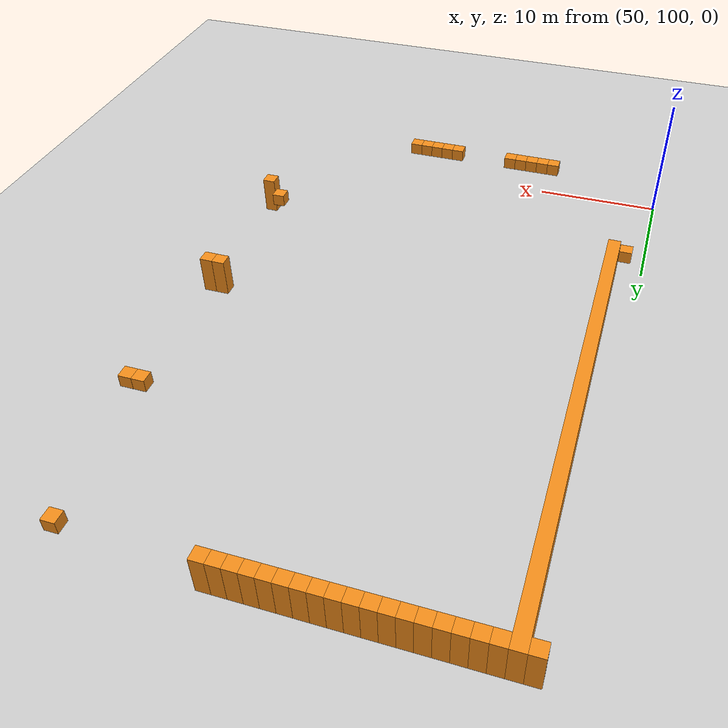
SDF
<sdf version="1.6">
 <world name="default">
  <include><uri>model://ground_plane</uri></include>
  <model name="unit_box_566">
   <pose>51.50   109.50     1.50 0 0 0</pose>
   <static>1</static>
   <link name="link">
    <inertial>
     <mass>5000</mass>
     <inertia><ixx>200</ixx><ixy>0</ixy><ixz>0</ixz><iyy>200</iyy><iyz>0</iyz><izz>200</izz></inertia>
    </inertial>
    <collision name="collision"><geometry><box><size>1 1 1</size></box></geometry></collision>
    <visual name="visual">
     <geometry><box><size>1 1 1</size></box></geometry>
     <material>
      <script><name>Gazebo/Orange</name><uri>file://media/materials/scripts/gazebo.material</uri></script>
     </material>
    </visual>
   </link>
  </model>
  <model name="unit_box_567">
   <pose>51.50   146.50     1.50 0 0 0</pose>
   <static>1</static>
   <link name="link">
    <inertial>
     <mass>5000</mass>
     <inertia><ixx>200</ixx><ixy>0</ixy><ixz>0</ixz><iyy>200</iyy><iyz>0</iyz><izz>200</izz></inertia>
    </inertial>
    <collision name="collision"><geometry><box><size>1 1 3</size></box></geometry></collision>
    <visual name="visual">
     <geometry><box><size>1 1 3</size></box></geometry>
     <material>
      <script><name>Gazebo/Orange</name><uri>file://media/materials/scripts/gazebo.material</uri></script>
     </material>
    </visual>
   </link>
  </model>
  <model name="unit_box_577">
   <pose>52.50   128.50     1.50 0 0 0</pose>
   <static>1</static>
   <link name="link">
    <inertial>
     <mass>5000</mass>
     <inertia><ixx>200</ixx><ixy>0</ixy><ixz>0</ixz><iyy>200</iyy><iyz>0</iyz><izz>200</izz></inertia>
    </inertial>
    <collision name="collision"><geometry><box><size>1 37 3</size></box></geometry></collision>
    <visual name="visual">
     <geometry><box><size>1 37 3</size></box></geometry>
     <material>
      <script><name>Gazebo/Orange</name><uri>file://media/materials/scripts/gazebo.material</uri></script>
     </material>
    </visual>
   </link>
  </model>
  <model name="unit_box_587">
   <pose>53.50   146.50     1.50 0 0 0</pose>
   <static>1</static>
   <link name="link">
    <inertial>
     <mass>5000</mass>
     <inertia><ixx>200</ixx><ixy>0</ixy><ixz>0</ixz><iyy>200</iyy><iyz>0</iyz><izz>200</izz></inertia>
    </inertial>
    <collision name="collision"><geometry><box><size>1 1 3</size></box></geometry></collision>
    <visual name="visual">
     <geometry><box><size>1 1 3</size></box></geometry>
     <material>
      <script><name>Gazebo/Orange</name><uri>file://media/materials/scripts/gazebo.material</uri></script>
     </material>
    </visual>
   </link>
  </model>
  <model name="unit_box_598">
   <pose>54.50   146.50     1.50 0 0 0</pose>
   <static>1</static>
   <link name="link">
    <inertial>
     <mass>5000</mass>
     <inertia><ixx>200</ixx><ixy>0</ixy><ixz>0</ixz><iyy>200</iyy><iyz>0</iyz><izz>200</izz></inertia>
    </inertial>
    <collision name="collision"><geometry><box><size>1 1 3</size></box></geometry></collision>
    <visual name="visual">
     <geometry><box><size>1 1 3</size></box></geometry>
     <material>
      <script><name>Gazebo/Orange</name><uri>file://media/materials/scripts/gazebo.material</uri></script>
     </material>
    </visual>
   </link>
  </model>
  <model name="unit_box_607">
   <pose>55.50   146.50     1.50 0 0 0</pose>
   <static>1</static>
   <link name="link">
    <inertial>
     <mass>5000</mass>
     <inertia><ixx>200</ixx><ixy>0</ixy><ixz>0</ixz><iyy>200</iyy><iyz>0</iyz><izz>200</izz></inertia>
    </inertial>
    <collision name="collision"><geometry><box><size>1 1 3</size></box></geometry></collision>
    <visual name="visual">
     <geometry><box><size>1 1 3</size></box></geometry>
     <material>
      <script><name>Gazebo/Orange</name><uri>file://media/materials/scripts/gazebo.material</uri></script>
     </material>
    </visual>
   </link>
  </model>
  <model name="unit_box_616">
   <pose>56.50   146.50     1.50 0 0 0</pose>
   <static>1</static>
   <link name="link">
    <inertial>
     <mass>5000</mass>
     <inertia><ixx>200</ixx><ixy>0</ixy><ixz>0</ixz><iyy>200</iyy><iyz>0</iyz><izz>200</izz></inertia>
    </inertial>
    <collision name="collision"><geometry><box><size>1 1 3</size></box></geometry></collision>
    <visual name="visual">
     <geometry><box><size>1 1 3</size></box></geometry>
     <material>
      <script><name>Gazebo/Orange</name><uri>file://media/materials/scripts/gazebo.material</uri></script>
     </material>
    </visual>
   </link>
  </model>
  <model name="unit_box_626">
   <pose>57.50   146.50     1.50 0 0 0</pose>
   <static>1</static>
   <link name="link">
    <inertial>
     <mass>5000</mass>
     <inertia><ixx>200</ixx><ixy>0</ixy><ixz>0</ixz><iyy>200</iyy><iyz>0</iyz><izz>200</izz></inertia>
    </inertial>
    <collision name="collision"><geometry><box><size>1 1 3</size></box></geometry></collision>
    <visual name="visual">
     <geometry><box><size>1 1 3</size></box></geometry>
     <material>
      <script><name>Gazebo/Orange</name><uri>file://media/materials/scripts/gazebo.material</uri></script>
     </material>
    </visual>
   </link>
  </model>
  <model name="unit_box_635">
   <pose>58.50   146.50     1.50 0 0 0</pose>
   <static>1</static>
   <link name="link">
    <inertial>
     <mass>5000</mass>
     <inertia><ixx>200</ixx><ixy>0</ixy><ixz>0</ixz><iyy>200</iyy><iyz>0</iyz><izz>200</izz></inertia>
    </inertial>
    <collision name="collision"><geometry><box><size>1 1 3</size></box></geometry></collision>
    <visual name="visual">
     <geometry><box><size>1 1 3</size></box></geometry>
     <material>
      <script><name>Gazebo/Orange</name><uri>file://media/materials/scripts/gazebo.material</uri></script>
     </material>
    </visual>
   </link>
  </model>
  <model name="unit_box_646">
   <pose>59.50    98.00     1.50 0 0 0</pose>
   <static>1</static>
   <link name="link">
    <inertial>
     <mass>5000</mass>
     <inertia><ixx>200</ixx><ixy>0</ixy><ixz>0</ixz><iyy>200</iyy><iyz>0</iyz><izz>200</izz></inertia>
    </inertial>
    <collision name="collision"><geometry><box><size>1 1 1</size></box></geometry></collision>
    <visual name="visual">
     <geometry><box><size>1 1 1</size></box></geometry>
     <material>
      <script><name>Gazebo/Orange</name><uri>file://media/materials/scripts/gazebo.material</uri></script>
     </material>
    </visual>
   </link>
  </model>
  <model name="unit_box_647">
   <pose>59.50   146.50     1.50 0 0 0</pose>
   <static>1</static>
   <link name="link">
    <inertial>
     <mass>5000</mass>
     <inertia><ixx>200</ixx><ixy>0</ixy><ixz>0</ixz><iyy>200</iyy><iyz>0</iyz><izz>200</izz></inertia>
    </inertial>
    <collision name="collision"><geometry><box><size>1 1 3</size></box></geometry></collision>
    <visual name="visual">
     <geometry><box><size>1 1 3</size></box></geometry>
     <material>
      <script><name>Gazebo/Orange</name><uri>file://media/materials/scripts/gazebo.material</uri></script>
     </material>
    </visual>
   </link>
  </model>
  <model name="unit_box_658">
   <pose>60.50    98.00     1.50 0 0 0</pose>
   <static>1</static>
   <link name="link">
    <inertial>
     <mass>5000</mass>
     <inertia><ixx>200</ixx><ixy>0</ixy><ixz>0</ixz><iyy>200</iyy><iyz>0</iyz><izz>200</izz></inertia>
    </inertial>
    <collision name="collision"><geometry><box><size>1 1 1</size></box></geometry></collision>
    <visual name="visual">
     <geometry><box><size>1 1 1</size></box></geometry>
     <material>
      <script><name>Gazebo/Orange</name><uri>file://media/materials/scripts/gazebo.material</uri></script>
     </material>
    </visual>
   </link>
  </model>
  <model name="unit_box_659">
   <pose>60.50   146.50     1.50 0 0 0</pose>
   <static>1</static>
   <link name="link">
    <inertial>
     <mass>5000</mass>
     <inertia><ixx>200</ixx><ixy>0</ixy><ixz>0</ixz><iyy>200</iyy><iyz>0</iyz><izz>200</izz></inertia>
    </inertial>
    <collision name="collision"><geometry><box><size>1 1 3</size></box></geometry></collision>
    <visual name="visual">
     <geometry><box><size>1 1 3</size></box></geometry>
     <material>
      <script><name>Gazebo/Orange</name><uri>file://media/materials/scripts/gazebo.material</uri></script>
     </material>
    </visual>
   </link>
  </model>
  <model name="unit_box_670">
   <pose>61.50    98.00     1.50 0 0 0</pose>
   <static>1</static>
   <link name="link">
    <inertial>
     <mass>5000</mass>
     <inertia><ixx>200</ixx><ixy>0</ixy><ixz>0</ixz><iyy>200</iyy><iyz>0</iyz><izz>200</izz></inertia>
    </inertial>
    <collision name="collision"><geometry><box><size>1 1 1</size></box></geometry></collision>
    <visual name="visual">
     <geometry><box><size>1 1 1</size></box></geometry>
     <material>
      <script><name>Gazebo/Orange</name><uri>file://media/materials/scripts/gazebo.material</uri></script>
     </material>
    </visual>
   </link>
  </model>
  <model name="unit_box_671">
   <pose>61.50   146.50     1.50 0 0 0</pose>
   <static>1</static>
   <link name="link">
    <inertial>
     <mass>5000</mass>
     <inertia><ixx>200</ixx><ixy>0</ixy><ixz>0</ixz><iyy>200</iyy><iyz>0</iyz><izz>200</izz></inertia>
    </inertial>
    <collision name="collision"><geometry><box><size>1 1 3</size></box></geometry></collision>
    <visual name="visual">
     <geometry><box><size>1 1 3</size></box></geometry>
     <material>
      <script><name>Gazebo/Orange</name><uri>file://media/materials/scripts/gazebo.material</uri></script>
     </material>
    </visual>
   </link>
  </model>
  <model name="unit_box_680">
   <pose>62.50    98.00     1.50 0 0 0</pose>
   <static>1</static>
   <link name="link">
    <inertial>
     <mass>5000</mass>
     <inertia><ixx>200</ixx><ixy>0</ixy><ixz>0</ixz><iyy>200</iyy><iyz>0</iyz><izz>200</izz></inertia>
    </inertial>
    <collision name="collision"><geometry><box><size>1 1 1</size></box></geometry></collision>
    <visual name="visual">
     <geometry><box><size>1 1 1</size></box></geometry>
     <material>
      <script><name>Gazebo/Orange</name><uri>file://media/materials/scripts/gazebo.material</uri></script>
     </material>
    </visual>
   </link>
  </model>
  <model name="unit_box_681">
   <pose>62.50   146.50     1.50 0 0 0</pose>
   <static>1</static>
   <link name="link">
    <inertial>
     <mass>5000</mass>
     <inertia><ixx>200</ixx><ixy>0</ixy><ixz>0</ixz><iyy>200</iyy><iyz>0</iyz><izz>200</izz></inertia>
    </inertial>
    <collision name="collision"><geometry><box><size>1 1 3</size></box></geometry></collision>
    <visual name="visual">
     <geometry><box><size>1 1 3</size></box></geometry>
     <material>
      <script><name>Gazebo/Orange</name><uri>file://media/materials/scripts/gazebo.material</uri></script>
     </material>
    </visual>
   </link>
  </model>
  <model name="unit_box_690">
   <pose>63.50    98.00     1.50 0 0 0</pose>
   <static>1</static>
   <link name="link">
    <inertial>
     <mass>5000</mass>
     <inertia><ixx>200</ixx><ixy>0</ixy><ixz>0</ixz><iyy>200</iyy><iyz>0</iyz><izz>200</izz></inertia>
    </inertial>
    <collision name="collision"><geometry><box><size>1 1 1</size></box></geometry></collision>
    <visual name="visual">
     <geometry><box><size>1 1 1</size></box></geometry>
     <material>
      <script><name>Gazebo/Orange</name><uri>file://media/materials/scripts/gazebo.material</uri></script>
     </material>
    </visual>
   </link>
  </model>
  <model name="unit_box_691">
   <pose>63.50   146.50     1.50 0 0 0</pose>
   <static>1</static>
   <link name="link">
    <inertial>
     <mass>5000</mass>
     <inertia><ixx>200</ixx><ixy>0</ixy><ixz>0</ixz><iyy>200</iyy><iyz>0</iyz><izz>200</izz></inertia>
    </inertial>
    <collision name="collision"><geometry><box><size>1 1 3</size></box></geometry></collision>
    <visual name="visual">
     <geometry><box><size>1 1 3</size></box></geometry>
     <material>
      <script><name>Gazebo/Orange</name><uri>file://media/materials/scripts/gazebo.material</uri></script>
     </material>
    </visual>
   </link>
  </model>
  <model name="unit_box_700">
   <pose>64.50   146.50     1.50 0 0 0</pose>
   <static>1</static>
   <link name="link">
    <inertial>
     <mass>5000</mass>
     <inertia><ixx>200</ixx><ixy>0</ixy><ixz>0</ixz><iyy>200</iyy><iyz>0</iyz><izz>200</izz></inertia>
    </inertial>
    <collision name="collision"><geometry><box><size>1 1 3</size></box></geometry></collision>
    <visual name="visual">
     <geometry><box><size>1 1 3</size></box></geometry>
     <material>
      <script><name>Gazebo/Orange</name><uri>file://media/materials/scripts/gazebo.material</uri></script>
     </material>
    </visual>
   </link>
  </model>
  <model name="unit_box_709">
   <pose>65.50   146.50     1.50 0 0 0</pose>
   <static>1</static>
   <link name="link">
    <inertial>
     <mass>5000</mass>
     <inertia><ixx>200</ixx><ixy>0</ixy><ixz>0</ixz><iyy>200</iyy><iyz>0</iyz><izz>200</izz></inertia>
    </inertial>
    <collision name="collision"><geometry><box><size>1 1 3</size></box></geometry></collision>
    <visual name="visual">
     <geometry><box><size>1 1 3</size></box></geometry>
     <material>
      <script><name>Gazebo/Orange</name><uri>file://media/materials/scripts/gazebo.material</uri></script>
     </material>
    </visual>
   </link>
  </model>
  <model name="unit_box_718">
   <pose>66.50   146.50     1.50 0 0 0</pose>
   <static>1</static>
   <link name="link">
    <inertial>
     <mass>5000</mass>
     <inertia><ixx>200</ixx><ixy>0</ixy><ixz>0</ixz><iyy>200</iyy><iyz>0</iyz><izz>200</izz></inertia>
    </inertial>
    <collision name="collision"><geometry><box><size>1 1 3</size></box></geometry></collision>
    <visual name="visual">
     <geometry><box><size>1 1 3</size></box></geometry>
     <material>
      <script><name>Gazebo/Orange</name><uri>file://media/materials/scripts/gazebo.material</uri></script>
     </material>
    </visual>
   </link>
  </model>
  <model name="unit_box_727">
   <pose>67.50   146.50     1.50 0 0 0</pose>
   <static>1</static>
   <link name="link">
    <inertial>
     <mass>5000</mass>
     <inertia><ixx>200</ixx><ixy>0</ixy><ixz>0</ixz><iyy>200</iyy><iyz>0</iyz><izz>200</izz></inertia>
    </inertial>
    <collision name="collision"><geometry><box><size>1 1 3</size></box></geometry></collision>
    <visual name="visual">
     <geometry><box><size>1 1 3</size></box></geometry>
     <material>
      <script><name>Gazebo/Orange</name><uri>file://media/materials/scripts/gazebo.material</uri></script>
     </material>
    </visual>
   </link>
  </model>
  <model name="unit_box_736">
   <pose>68.50    98.00     1.50 0 0 0</pose>
   <static>1</static>
   <link name="link">
    <inertial>
     <mass>5000</mass>
     <inertia><ixx>200</ixx><ixy>0</ixy><ixz>0</ixz><iyy>200</iyy><iyz>0</iyz><izz>200</izz></inertia>
    </inertial>
    <collision name="collision"><geometry><box><size>1 1 1</size></box></geometry></collision>
    <visual name="visual">
     <geometry><box><size>1 1 1</size></box></geometry>
     <material>
      <script><name>Gazebo/Orange</name><uri>file://media/materials/scripts/gazebo.material</uri></script>
     </material>
    </visual>
   </link>
  </model>
  <model name="unit_box_737">
   <pose>68.50   146.50     1.50 0 0 0</pose>
   <static>1</static>
   <link name="link">
    <inertial>
     <mass>5000</mass>
     <inertia><ixx>200</ixx><ixy>0</ixy><ixz>0</ixz><iyy>200</iyy><iyz>0</iyz><izz>200</izz></inertia>
    </inertial>
    <collision name="collision"><geometry><box><size>1 1 3</size></box></geometry></collision>
    <visual name="visual">
     <geometry><box><size>1 1 3</size></box></geometry>
     <material>
      <script><name>Gazebo/Orange</name><uri>file://media/materials/scripts/gazebo.material</uri></script>
     </material>
    </visual>
   </link>
  </model>
  <model name="unit_box_746">
   <pose>69.50    98.00     1.50 0 0 0</pose>
   <static>1</static>
   <link name="link">
    <inertial>
     <mass>5000</mass>
     <inertia><ixx>200</ixx><ixy>0</ixy><ixz>0</ixz><iyy>200</iyy><iyz>0</iyz><izz>200</izz></inertia>
    </inertial>
    <collision name="collision"><geometry><box><size>1 1 1</size></box></geometry></collision>
    <visual name="visual">
     <geometry><box><size>1 1 1</size></box></geometry>
     <material>
      <script><name>Gazebo/Orange</name><uri>file://media/materials/scripts/gazebo.material</uri></script>
     </material>
    </visual>
   </link>
  </model>
  <model name="unit_box_747">
   <pose>69.50   146.50     1.50 0 0 0</pose>
   <static>1</static>
   <link name="link">
    <inertial>
     <mass>5000</mass>
     <inertia><ixx>200</ixx><ixy>0</ixy><ixz>0</ixz><iyy>200</iyy><iyz>0</iyz><izz>200</izz></inertia>
    </inertial>
    <collision name="collision"><geometry><box><size>1 1 3</size></box></geometry></collision>
    <visual name="visual">
     <geometry><box><size>1 1 3</size></box></geometry>
     <material>
      <script><name>Gazebo/Orange</name><uri>file://media/materials/scripts/gazebo.material</uri></script>
     </material>
    </visual>
   </link>
  </model>
  <model name="unit_box_758">
   <pose>70.50    98.00     1.50 0 0 0</pose>
   <static>1</static>
   <link name="link">
    <inertial>
     <mass>5000</mass>
     <inertia><ixx>200</ixx><ixy>0</ixy><ixz>0</ixz><iyy>200</iyy><iyz>0</iyz><izz>200</izz></inertia>
    </inertial>
    <collision name="collision"><geometry><box><size>1 1 1</size></box></geometry></collision>
    <visual name="visual">
     <geometry><box><size>1 1 1</size></box></geometry>
     <material>
      <script><name>Gazebo/Orange</name><uri>file://media/materials/scripts/gazebo.material</uri></script>
     </material>
    </visual>
   </link>
  </model>
  <model name="unit_box_759">
   <pose>70.50   146.50     1.50 0 0 0</pose>
   <static>1</static>
   <link name="link">
    <inertial>
     <mass>5000</mass>
     <inertia><ixx>200</ixx><ixy>0</ixy><ixz>0</ixz><iyy>200</iyy><iyz>0</iyz><izz>200</izz></inertia>
    </inertial>
    <collision name="collision"><geometry><box><size>1 1 3</size></box></geometry></collision>
    <visual name="visual">
     <geometry><box><size>1 1 3</size></box></geometry>
     <material>
      <script><name>Gazebo/Orange</name><uri>file://media/materials/scripts/gazebo.material</uri></script>
     </material>
    </visual>
   </link>
  </model>
  <model name="unit_box_769">
   <pose>71.50    98.00     1.50 0 0 0</pose>
   <static>1</static>
   <link name="link">
    <inertial>
     <mass>5000</mass>
     <inertia><ixx>200</ixx><ixy>0</ixy><ixz>0</ixz><iyy>200</iyy><iyz>0</iyz><izz>200</izz></inertia>
    </inertial>
    <collision name="collision"><geometry><box><size>1 1 1</size></box></geometry></collision>
    <visual name="visual">
     <geometry><box><size>1 1 1</size></box></geometry>
     <material>
      <script><name>Gazebo/Orange</name><uri>file://media/materials/scripts/gazebo.material</uri></script>
     </material>
    </visual>
   </link>
  </model>
  <model name="unit_box_780">
   <pose>72.50    98.00     1.50 0 0 0</pose>
   <static>1</static>
   <link name="link">
    <inertial>
     <mass>5000</mass>
     <inertia><ixx>200</ixx><ixy>0</ixy><ixz>0</ixz><iyy>200</iyy><iyz>0</iyz><izz>200</izz></inertia>
    </inertial>
    <collision name="collision"><geometry><box><size>1 1 1</size></box></geometry></collision>
    <visual name="visual">
     <geometry><box><size>1 1 1</size></box></geometry>
     <material>
      <script><name>Gazebo/Orange</name><uri>file://media/materials/scripts/gazebo.material</uri></script>
     </material>
    </visual>
   </link>
  </model>
  <model name="unit_box_834">
   <pose>80.50   146.00     1.50 0 0 0</pose>
   <static>1</static>
   <link name="link">
    <inertial>
     <mass>5000</mass>
     <inertia><ixx>200</ixx><ixy>0</ixy><ixz>0</ixz><iyy>200</iyy><iyz>0</iyz><izz>200</izz></inertia>
    </inertial>
    <collision name="collision"><geometry><box><size>1 1 1</size></box></geometry></collision>
    <visual name="visual">
     <geometry><box><size>1 1 1</size></box></geometry>
     <material>
      <script><name>Gazebo/Orange</name><uri>file://media/materials/scripts/gazebo.material</uri></script>
     </material>
    </visual>
   </link>
  </model>
  <model name="unit_box_842">
   <pose>81.50   110.00     1.50 0 0 0</pose>
   <static>1</static>
   <link name="link">
    <inertial>
     <mass>5000</mass>
     <inertia><ixx>200</ixx><ixy>0</ixy><ixz>0</ixz><iyy>200</iyy><iyz>0</iyz><izz>200</izz></inertia>
    </inertial>
    <collision name="collision"><geometry><box><size>1 1 1</size></box></geometry></collision>
    <visual name="visual">
     <geometry><box><size>1 1 1</size></box></geometry>
     <material>
      <script><name>Gazebo/Orange</name><uri>file://media/materials/scripts/gazebo.material</uri></script>
     </material>
    </visual>
   </link>
  </model>
  <model name="unit_box_843">
   <pose>81.50   121.50     1.50 0 0 0</pose>
   <static>1</static>
   <link name="link">
    <inertial>
     <mass>5000</mass>
     <inertia><ixx>200</ixx><ixy>0</ixy><ixz>0</ixz><iyy>200</iyy><iyz>0</iyz><izz>200</izz></inertia>
    </inertial>
    <collision name="collision"><geometry><box><size>1 1 3</size></box></geometry></collision>
    <visual name="visual">
     <geometry><box><size>1 1 3</size></box></geometry>
     <material>
      <script><name>Gazebo/Orange</name><uri>file://media/materials/scripts/gazebo.material</uri></script>
     </material>
    </visual>
   </link>
  </model>
  <model name="unit_box_844">
   <pose>81.50   134.00     1.50 0 0 0</pose>
   <static>1</static>
   <link name="link">
    <inertial>
     <mass>5000</mass>
     <inertia><ixx>200</ixx><ixy>0</ixy><ixz>0</ixz><iyy>200</iyy><iyz>0</iyz><izz>200</izz></inertia>
    </inertial>
    <collision name="collision"><geometry><box><size>1 1 1</size></box></geometry></collision>
    <visual name="visual">
     <geometry><box><size>1 1 1</size></box></geometry>
     <material>
      <script><name>Gazebo/Orange</name><uri>file://media/materials/scripts/gazebo.material</uri></script>
     </material>
    </visual>
   </link>
  </model>
  <model name="unit_box_859">
   <pose>82.50   109.50     1.50 0 0 0</pose>
   <static>1</static>
   <link name="link">
    <inertial>
     <mass>5000</mass>
     <inertia><ixx>200</ixx><ixy>0</ixy><ixz>0</ixz><iyy>200</iyy><iyz>0</iyz><izz>200</izz></inertia>
    </inertial>
    <collision name="collision"><geometry><box><size>1 1 3</size></box></geometry></collision>
    <visual name="visual">
     <geometry><box><size>1 1 3</size></box></geometry>
     <material>
      <script><name>Gazebo/Orange</name><uri>file://media/materials/scripts/gazebo.material</uri></script>
     </material>
    </visual>
   </link>
  </model>
  <model name="unit_box_860">
   <pose>82.50   121.50     1.50 0 0 0</pose>
   <static>1</static>
   <link name="link">
    <inertial>
     <mass>5000</mass>
     <inertia><ixx>200</ixx><ixy>0</ixy><ixz>0</ixz><iyy>200</iyy><iyz>0</iyz><izz>200</izz></inertia>
    </inertial>
    <collision name="collision"><geometry><box><size>1 1 3</size></box></geometry></collision>
    <visual name="visual">
     <geometry><box><size>1 1 3</size></box></geometry>
     <material>
      <script><name>Gazebo/Orange</name><uri>file://media/materials/scripts/gazebo.material</uri></script>
     </material>
    </visual>
   </link>
  </model>
  <model name="unit_box_861">
   <pose>82.50   134.00     1.50 0 0 0</pose>
   <static>1</static>
   <link name="link">
    <inertial>
     <mass>5000</mass>
     <inertia><ixx>200</ixx><ixy>0</ixy><ixz>0</ixz><iyy>200</iyy><iyz>0</iyz><izz>200</izz></inertia>
    </inertial>
    <collision name="collision"><geometry><box><size>1 1 1</size></box></geometry></collision>
    <visual name="visual">
     <geometry><box><size>1 1 1</size></box></geometry>
     <material>
      <script><name>Gazebo/Orange</name><uri>file://media/materials/scripts/gazebo.material</uri></script>
     </material>
    </visual>
   </link>
  </model>
 </world>
</sdf>
